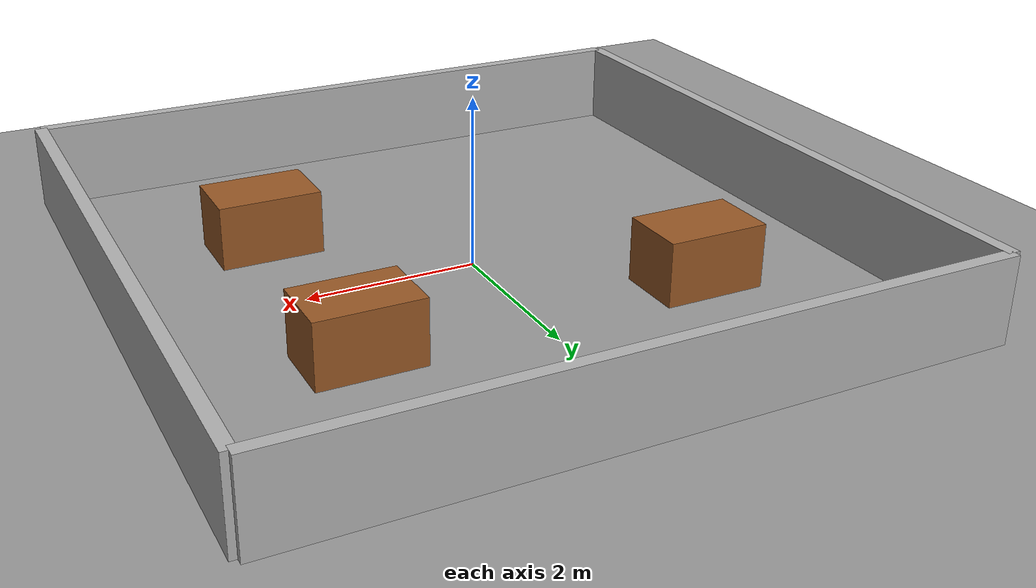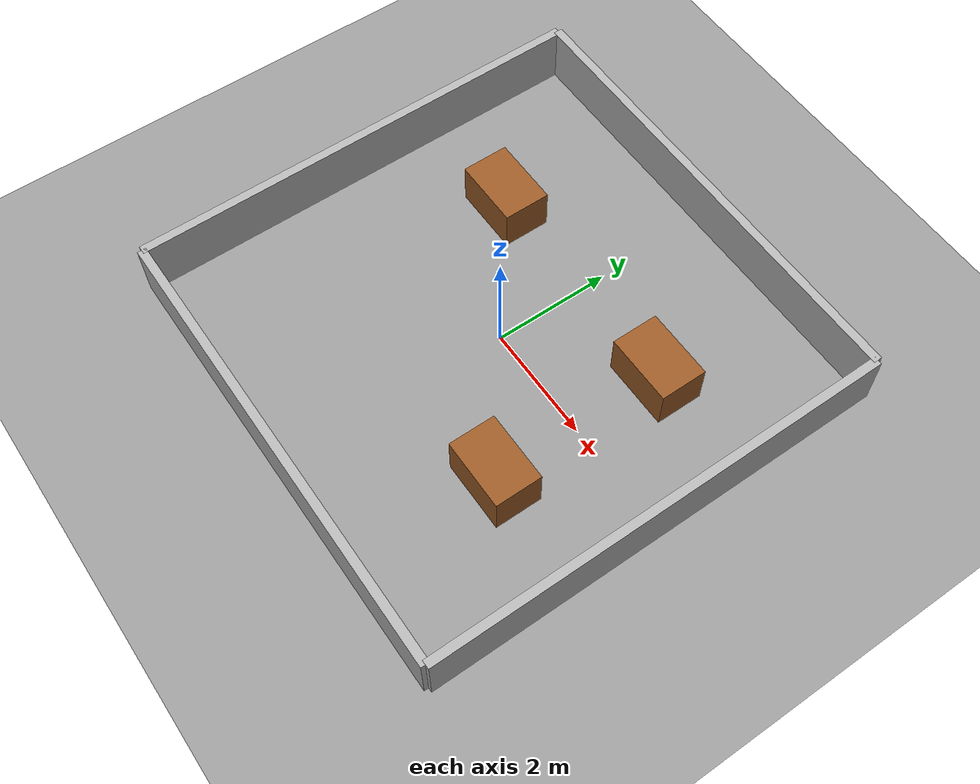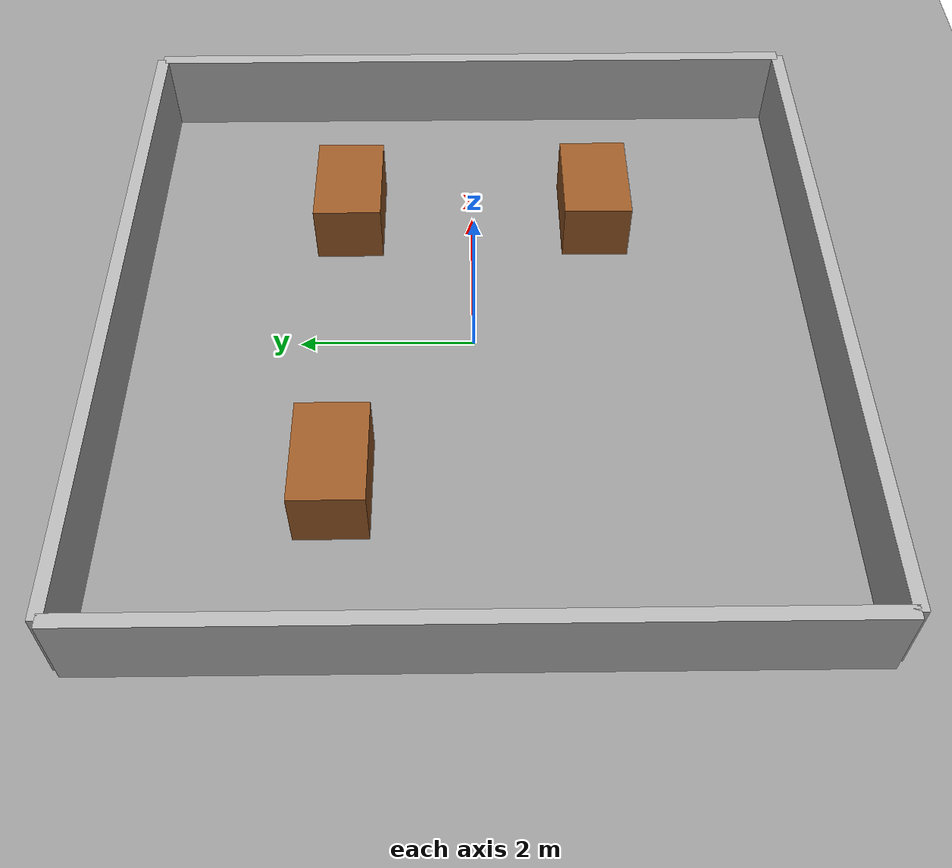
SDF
<?xml version='1.0' encoding='utf-8'?>
<sdf version="1.9">
  <world name="three_tables">
    <physics name="physics" type="ignored">
      <max_step_size>0.001</max_step_size>
      <real_time_factor>1</real_time_factor>
    </physics>
    <plugin filename="gz-sim-physics-system" name="gz::sim::systems::Physics" />
    <plugin filename="gz-sim-user-commands-system" name="gz::sim::systems::UserCommands" />
    <plugin filename="gz-sim-scene-broadcaster-system" name="gz::sim::systems::SceneBroadcaster" />
    <plugin filename="gz-sim-sensors-system" name="gz::sim::systems::Sensors">
      <render_engine>ogre2</render_engine>
    </plugin>
    <plugin filename="gz-sim-imu-system" name="gz::sim::systems::Imu" />
    <gravity>0 0 -9.8</gravity>
    <scene>
      <ambient>0.4 0.4 0.4 1</ambient>
      <shadows>false</shadows>
    </scene>
    <light name="sun" type="directional">
      <pose>0 0 10 0 0 0</pose>
      <cast_shadows>true</cast_shadows>
      <diffuse>0.8 0.8 0.8 1</diffuse>
      <specular>0.2 0.2 0.2 1</specular>
      <direction>-0.5 0.1 -0.9</direction>
    </light>
    <model name="ground_plane">
      <static>true</static>
      <link name="link">
        <collision name="collision">
          <geometry>
            <plane>
              <normal>0 0 1</normal>
              <size>100 100</size>
            </plane>
          </geometry>
        </collision>
        <visual name="visual">
          <geometry>
            <plane>
              <normal>0 0 1</normal>
              <size>100 100</size>
            </plane>
          </geometry>
          <material>
            <ambient>0.6 0.6 0.6 1</ambient>
            <diffuse>0.6 0.6 0.6 1</diffuse>
          </material>
        </visual>
      </link>
    </model>
    <model name="table_1">
      <static>true</static>
      <pose>2 1.5 0.375 0 0 0</pose>
      <link name="body">
        <collision name="collision">
          <geometry>
            <box>
              <size>1.2 0.8 0.75</size>
            </box>
          </geometry>
        </collision>
        <visual name="visual">
          <geometry>
            <box>
              <size>1.2 0.8 0.75</size>
            </box>
          </geometry>
          <material>
            <diffuse>0.6 0.35 0.15 1</diffuse>
            <ambient>0.6 0.35 0.15 1</ambient>
          </material>
        </visual>
      </link>
    </model>
    <model name="table_2">
      <static>true</static>
      <pose>2 -1.5 0.375 0 0 0</pose>
      <link name="body">
        <collision name="collision">
          <geometry>
            <box>
              <size>1.2 0.8 0.75</size>
            </box>
          </geometry>
        </collision>
        <visual name="visual">
          <geometry>
            <box>
              <size>1.2 0.8 0.75</size>
            </box>
          </geometry>
          <material>
            <diffuse>0.6 0.35 0.15 1</diffuse>
            <ambient>0.6 0.35 0.15 1</ambient>
          </material>
        </visual>
      </link>
    </model>
    <model name="table_3">
      <static>true</static>
      <pose>-2 1.5 0.375 0 0 0</pose>
      <link name="body">
        <collision name="collision">
          <geometry>
            <box>
              <size>1.2 0.8 0.75</size>
            </box>
          </geometry>
        </collision>
        <visual name="visual">
          <geometry>
            <box>
              <size>1.2 0.8 0.75</size>
            </box>
          </geometry>
          <material>
            <diffuse>0.6 0.35 0.15 1</diffuse>
            <ambient>0.6 0.35 0.15 1</ambient>
          </material>
        </visual>
      </link>
    </model>
    <model name="north">
      <static>true</static>
      <pose>0 4 0.5 0 0 0</pose>
      <link name="body">
        <collision name="collision">
          <geometry>
            <box>
              <size>8 0.15 1</size>
            </box>
          </geometry>
        </collision>
        <visual name="visual">
          <geometry>
            <box>
              <size>8 0.15 1</size>
            </box>
          </geometry>
          <material>
            <diffuse>0.7 0.7 0.7 1</diffuse>
            <ambient>0.7 0.7 0.7 1</ambient>
          </material>
        </visual>
      </link>
    </model>
    <model name="south">
      <static>true</static>
      <pose>0 -4 0.5 0 0 0</pose>
      <link name="body">
        <collision name="collision">
          <geometry>
            <box>
              <size>8 0.15 1</size>
            </box>
          </geometry>
        </collision>
        <visual name="visual">
          <geometry>
            <box>
              <size>8 0.15 1</size>
            </box>
          </geometry>
          <material>
            <diffuse>0.7 0.7 0.7 1</diffuse>
            <ambient>0.7 0.7 0.7 1</ambient>
          </material>
        </visual>
      </link>
    </model>
    <model name="east">
      <static>true</static>
      <pose>4 0 0.5 0 0 0</pose>
      <link name="body">
        <collision name="collision">
          <geometry>
            <box>
              <size>0.15 8 1</size>
            </box>
          </geometry>
        </collision>
        <visual name="visual">
          <geometry>
            <box>
              <size>0.15 8 1</size>
            </box>
          </geometry>
          <material>
            <diffuse>0.7 0.7 0.7 1</diffuse>
            <ambient>0.7 0.7 0.7 1</ambient>
          </material>
        </visual>
      </link>
    </model>
    <model name="west">
      <static>true</static>
      <pose>-4 0 0.5 0 0 0</pose>
      <link name="body">
        <collision name="collision">
          <geometry>
            <box>
              <size>0.15 8 1</size>
            </box>
          </geometry>
        </collision>
        <visual name="visual">
          <geometry>
            <box>
              <size>0.15 8 1</size>
            </box>
          </geometry>
          <material>
            <diffuse>0.7 0.7 0.7 1</diffuse>
            <ambient>0.7 0.7 0.7 1</ambient>
          </material>
        </visual>
      </link>
    </model>
  </world>
</sdf>
